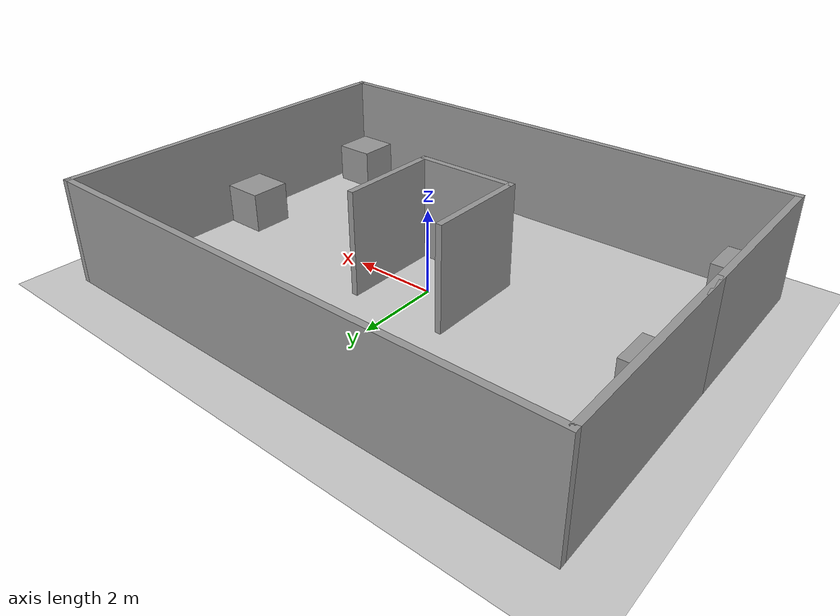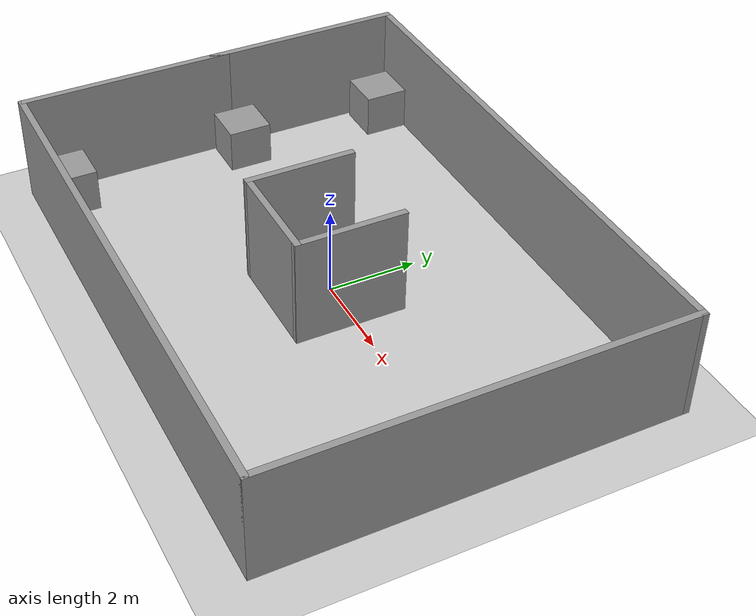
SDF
<sdf version="1.7">
 <world name="default">
  <light name="sun" type="directional">
   <pose>0 0 10 0 -0 0</pose>
   <diffuse>0.8 0.8 0.8 1</diffuse>
   <specular>0.2 0.2 0.2 1</specular>
   <attenuation>
    <range>1000</range>
    <constant>0.9</constant>
    <linear>0.01</linear>
    <quadratic>0.001</quadratic>
   </attenuation>
   <direction>-0.5 0.1 -0.9</direction>
   <spot><inner_angle>0</inner_angle><outer_angle>0</outer_angle><falloff>0</falloff></spot>
  </light>
  <model name="ground_plane">
   <static>1</static>
   <link name="link">
    <collision name="collision">
     <geometry><plane><normal>0 0 1</normal><size>100 100</size></plane></geometry>
     <surface>
      <contact><collide_bitmask>65535</collide_bitmask></contact>
      <friction><ode><mu>100</mu><mu2>50</mu2></ode></friction>
     </surface>
    </collision>
    <visual name="visual">
     <cast_shadows>0</cast_shadows>
     <geometry><plane><normal>0 0 1</normal><size>100 100</size></plane></geometry>
     <material>
      <script><uri>file://media/materials/scripts/gazebo.material</uri><name>Gazebo/Grey</name></script>
     </material>
    </visual>
   </link>
  </model>
  <gravity>0 0 -9.8</gravity>
  <magnetic_field>6e-06 2.3e-05 -4.2e-05</magnetic_field>
  <atmosphere type="adiabatic"/>
  <physics type="ode">
   <max_step_size>0.001</max_step_size>
   <real_time_factor>1</real_time_factor>
   <real_time_update_rate>1000</real_time_update_rate>
  </physics>
  <scene><ambient>0.4 0.4 0.4 1</ambient><background>0.7 0.7 0.7 1</background><shadows>1</shadows></scene>
  <spherical_coordinates>
   <surface_model>EARTH_WGS84</surface_model>
   <latitude_deg>0</latitude_deg>
   <longitude_deg>0</longitude_deg>
   <elevation>0</elevation>
   <heading_deg>0</heading_deg>
  </spherical_coordinates>
  <model name="maze_19">
   <pose>0.096042 -0.051442 0 0 -0 0</pose>
   <link name="Wall_3">
    <collision name="Wall_3_Collision">
     <geometry><box><size>5 0.15 2.5</size></box></geometry>
     <pose>0 0 1.25 0 -0 0</pose>
    </collision>
    <visual name="Wall_3_Visual">
     <pose>0 0 1.25 0 -0 0</pose>
     <geometry><box><size>5 0.15 2.5</size></box></geometry>
     <material>
      <script><uri>file://media/materials/scripts/gazebo.material</uri><name>Gazebo/Grey</name></script>
      <ambient>1 1 1 1</ambient>
     </material>
     <meta><layer>0</layer></meta>
    </visual>
    <pose>-6.175 -2.125 0 0 -0 -1.5708</pose>
   </link>
   <link name="Wall_4">
    <collision name="Wall_4_Collision">
     <geometry><box><size>12.5 0.15 2.5</size></box></geometry>
     <pose>0 0 1.25 0 -0 0</pose>
    </collision>
    <visual name="Wall_4_Visual">
     <pose>0 0 1.25 0 -0 0</pose>
     <geometry><box><size>12.5 0.15 2.5</size></box></geometry>
     <material>
      <script><uri>file://media/materials/scripts/gazebo.material</uri><name>Gazebo/Grey</name></script>
      <ambient>1 1 1 1</ambient>
     </material>
     <meta><layer>0</layer></meta>
    </visual>
    <pose>-0 -4.55 0 0 -0 0</pose>
   </link>
   <link name="Wall_5">
    <collision name="Wall_5_Collision">
     <geometry><box><size>9.25 0.15 2.5</size></box></geometry>
     <pose>0 0 1.25 0 -0 0</pose>
    </collision>
    <visual name="Wall_5_Visual">
     <pose>0 0 1.25 0 -0 0</pose>
     <geometry><box><size>9.25 0.15 2.5</size></box></geometry>
     <material>
      <script><uri>file://media/materials/scripts/gazebo.material</uri><name>Gazebo/Grey</name></script>
      <ambient>1 1 1 1</ambient>
     </material>
     <meta><layer>0</layer></meta>
    </visual>
    <pose>6.175 0 0 0 -0 1.5708</pose>
   </link>
   <link name="Wall_6">
    <collision name="Wall_6_Collision">
     <geometry><box><size>12.5 0.15 2.5</size></box></geometry>
     <pose>0 0 1.25 0 -0 0</pose>
    </collision>
    <visual name="Wall_6_Visual">
     <pose>0 0 1.25 0 -0 0</pose>
     <geometry><box><size>12.5 0.15 2.5</size></box></geometry>
     <material>
      <script><uri>file://media/materials/scripts/gazebo.material</uri><name>Gazebo/Grey</name></script>
      <ambient>1 1 1 1</ambient>
     </material>
     <meta><layer>0</layer></meta>
    </visual>
    <pose>-0 4.55 0 0 -0 3.14159</pose>
   </link>
   <link name="Wall_7">
    <collision name="Wall_7_Collision">
     <geometry><box><size>5 0.15 2.5</size></box></geometry>
     <pose>0 0 1.25 0 -0 0</pose>
    </collision>
    <visual name="Wall_7_Visual">
     <pose>0 0 1.25 0 -0 0</pose>
     <geometry><box><size>5 0.15 2.5</size></box></geometry>
     <material>
      <script><uri>file://media/materials/scripts/gazebo.material</uri><name>Gazebo/Grey</name></script>
      <ambient>1 1 1 1</ambient>
     </material>
     <meta><layer>0</layer></meta>
    </visual>
    <pose>-6.175 2.125 0 0 -0 -1.5708</pose>
   </link>
   <static>1</static>
  </model>
  <model name="U2.5">
   <pose>0.002421 -0.124293 0 0 -0 0</pose>
   <link name="Wall_14">
    <collision name="Wall_14_Collision">
     <geometry><box><size>2.5 0.15 2.5</size></box></geometry>
     <pose>0 0 1.25 0 -0 0</pose>
    </collision>
    <visual name="Wall_14_Visual">
     <pose>0 0 1.25 0 -0 0</pose>
     <geometry><box><size>2.5 0.15 2.5</size></box></geometry>
     <material>
      <script><uri>file://media/materials/scripts/gazebo.material</uri><name>Gazebo/Grey</name></script>
      <ambient>1 1 1 1</ambient>
     </material>
     <meta><layer>0</layer></meta>
    </visual>
    <pose>-1.175 -0 0 0 -0 -1.5708</pose>
   </link>
   <link name="Wall_15">
    <collision name="Wall_15_Collision">
     <geometry><box><size>2.5 0.15 2.5</size></box></geometry>
     <pose>0 0 1.25 0 -0 0</pose>
    </collision>
    <visual name="Wall_15_Visual">
     <pose>0 0 1.25 0 -0 0</pose>
     <geometry><box><size>2.5 0.15 2.5</size></box></geometry>
     <material>
      <script><uri>file://media/materials/scripts/gazebo.material</uri><name>Gazebo/Grey</name></script>
      <ambient>1 1 1 1</ambient>
     </material>
     <meta><layer>0</layer></meta>
    </visual>
    <pose>-0 -1.175 0 0 -0 0</pose>
   </link>
   <link name="Wall_16">
    <collision name="Wall_16_Collision">
     <geometry><box><size>2.5 0.15 2.5</size></box></geometry>
     <pose>0 0 1.25 0 -0 0</pose>
    </collision>
    <visual name="Wall_16_Visual">
     <pose>0 0 1.25 0 -0 0</pose>
     <geometry><box><size>2.5 0.15 2.5</size></box></geometry>
     <material>
      <script><uri>file://media/materials/scripts/gazebo.material</uri><name>Gazebo/Grey</name></script>
      <ambient>1 1 1 1</ambient>
     </material>
     <meta><layer>0</layer></meta>
    </visual>
    <pose>1.175 -0 0 0 -0 1.5708</pose>
   </link>
   <static>1</static>
  </model>
  <model name="unit_box">
   <pose>-5.41379 3.92357 0.5 0 -0 -3e-06</pose>
   <link name="link">
    <inertial>
     <mass>1</mass>
     <inertia>
      <ixx>0.166667</ixx>
      <ixy>0</ixy>
      <ixz>0</ixz>
      <iyy>0.166667</iyy>
      <iyz>0</iyz>
      <izz>0.166667</izz>
     </inertia>
    </inertial>
    <collision name="collision"><geometry><box><size>1 1 1</size></box></geometry></collision>
    <visual name="visual">
     <geometry><box><size>1 1 1</size></box></geometry>
     <material>
      <script><name>Gazebo/Grey</name><uri>file://media/materials/scripts/gazebo.material</uri></script>
     </material>
    </visual>
   </link>
  </model>
  <model name="unit_box_0">
   <pose>-5.41582 -3.92211 0.499995 0 1e-05 0</pose>
   <link name="link">
    <inertial>
     <mass>1</mass>
     <inertia>
      <ixx>0.166667</ixx>
      <ixy>0</ixy>
      <ixz>0</ixz>
      <iyy>0.166667</iyy>
      <iyz>0</iyz>
      <izz>0.166667</izz>
     </inertia>
    </inertial>
    <collision name="collision"><geometry><box><size>1 1 1</size></box></geometry></collision>
    <visual name="visual">
     <geometry><box><size>1 1 1</size></box></geometry>
     <material>
      <script><name>Gazebo/Grey</name><uri>file://media/materials/scripts/gazebo.material</uri></script>
     </material>
    </visual>
   </link>
  </model>
  <model name="unit_box_1">
   <pose>5.44079 -3.81583 0.499995 -1e-05 -0 -0</pose>
   <link name="link">
    <inertial>
     <mass>1</mass>
     <inertia>
      <ixx>0.166667</ixx>
      <ixy>0</ixy>
      <ixz>0</ixz>
      <iyy>0.166667</iyy>
      <iyz>0</iyz>
      <izz>0.166667</izz>
     </inertia>
    </inertial>
    <collision name="collision"><geometry><box><size>1 1 1</size></box></geometry></collision>
    <visual name="visual">
     <geometry><box><size>1 1 1</size></box></geometry>
     <material>
      <script><name>Gazebo/Grey</name><uri>file://media/materials/scripts/gazebo.material</uri></script>
     </material>
    </visual>
   </link>
  </model>
  <model name="unit_box_2">
   <pose>5.51042 3.71029 0.499995 0 1e-05 0</pose>
   <link name="link">
    <inertial>
     <mass>1</mass>
     <inertia>
      <ixx>0.166667</ixx>
      <ixy>0</ixy>
      <ixz>0</ixz>
      <iyy>0.166667</iyy>
      <iyz>0</iyz>
      <izz>0.166667</izz>
     </inertia>
    </inertial>
    <collision name="collision"><geometry><box><size>1 1 1</size></box></geometry></collision>
    <visual name="visual">
     <geometry><box><size>1 1 1</size></box></geometry>
     <material>
      <script><name>Gazebo/Grey</name><uri>file://media/materials/scripts/gazebo.material</uri></script>
     </material>
    </visual>
   </link>
  </model>
  <model name="unit_box_3">
   <pose>-5.46872 0.352785 0.499995 -1e-05 -0 0</pose>
   <link name="link">
    <inertial>
     <mass>1</mass>
     <inertia>
      <ixx>0.166667</ixx>
      <ixy>0</ixy>
      <ixz>0</ixz>
      <iyy>0.166667</iyy>
      <iyz>0</iyz>
      <izz>0.166667</izz>
     </inertia>
    </inertial>
    <collision name="collision"><geometry><box><size>1 1 1</size></box></geometry></collision>
    <visual name="visual">
     <geometry><box><size>1 1 1</size></box></geometry>
     <material>
      <script><name>Gazebo/Grey</name><uri>file://media/materials/scripts/gazebo.material</uri></script>
     </material>
    </visual>
   </link>
  </model>
  <model name="unit_box_4">
   <pose>5.68215 -0.012164 0.5 0 -0 0</pose>
   <link name="link">
    <inertial>
     <mass>1</mass>
     <inertia>
      <ixx>0.166667</ixx>
      <ixy>0</ixy>
      <ixz>0</ixz>
      <iyy>0.166667</iyy>
      <iyz>0</iyz>
      <izz>0.166667</izz>
     </inertia>
    </inertial>
    <collision name="collision"><geometry><box><size>1 1 1</size></box></geometry></collision>
    <visual name="visual">
     <geometry><box><size>1 1 1</size></box></geometry>
     <material>
      <script><name>Gazebo/Grey</name><uri>file://media/materials/scripts/gazebo.material</uri></script>
     </material>
    </visual>
   </link>
  </model>
 </world>
</sdf>
